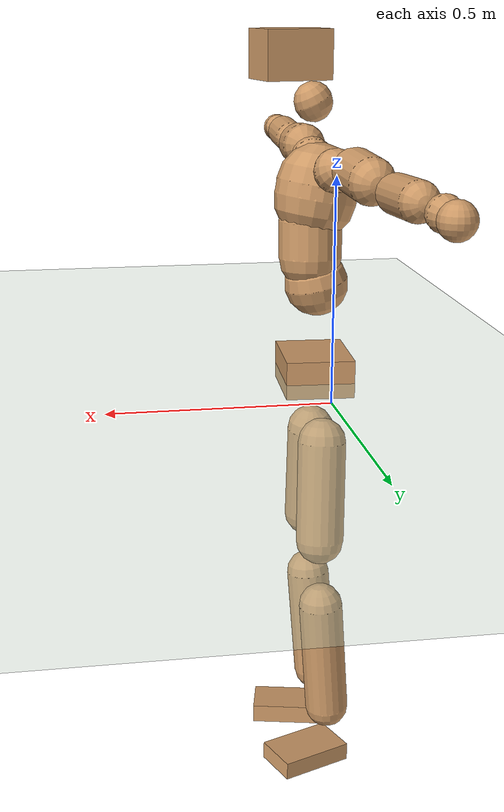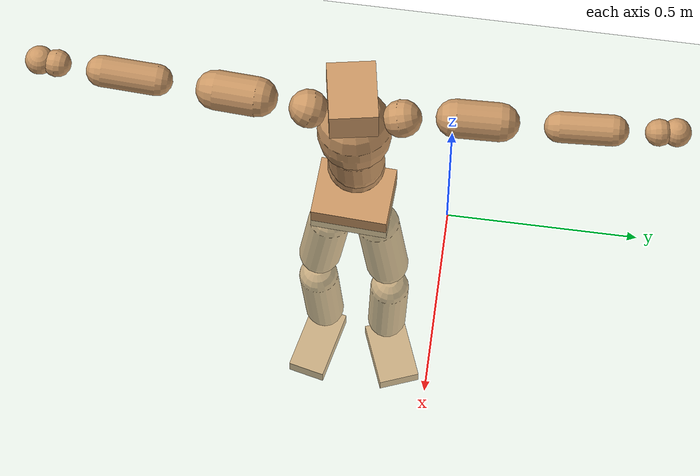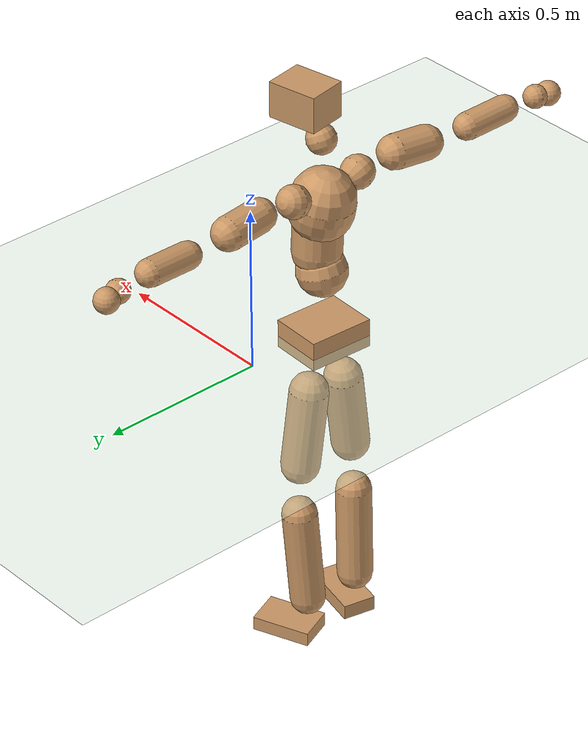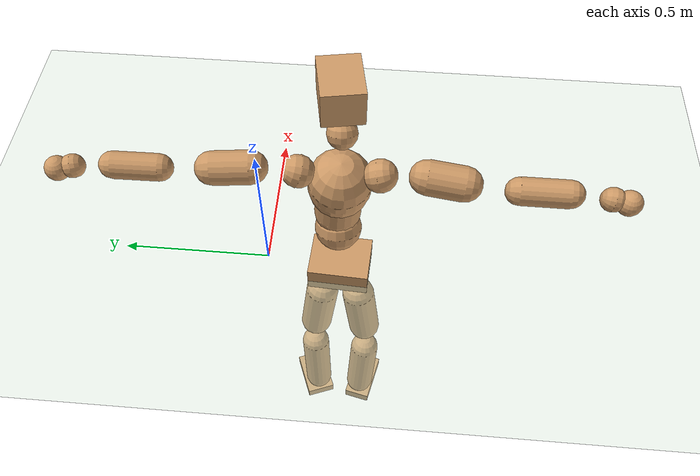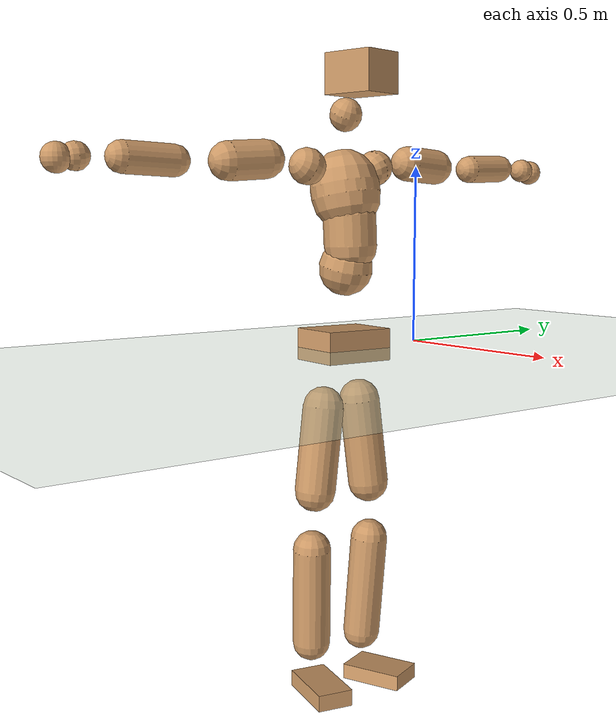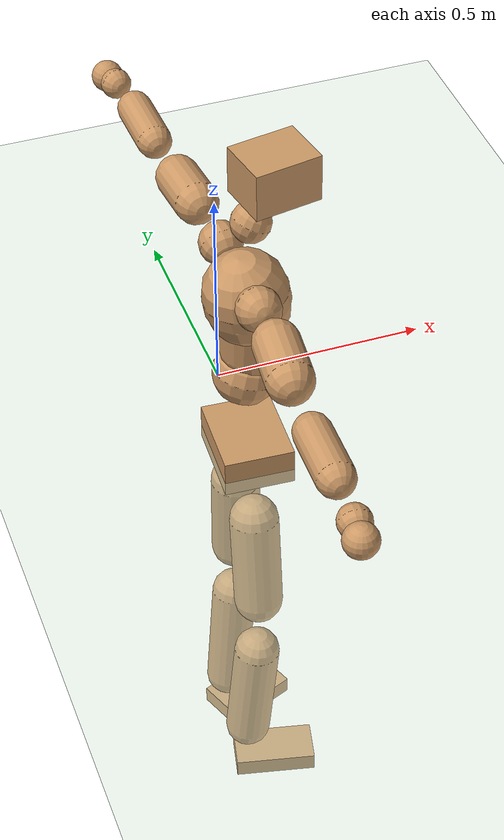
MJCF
<mujoco model="humanoid">
  <compiler coordinate="local" angle="radian"/>
  <default>
    <joint damping="0.0" armature="0.01" stiffness="0.0" limited="true"/>
    <geom conaffinity="1" condim="3" contype="7" margin="0.001" rgba="0.8 0.6 .4 1"/>
  </default>
  <asset>
    <texture type="skybox" builtin="gradient" rgb1=".4 .5 .6" rgb2="0 0 0" width="100" height="100"/>
    <texture builtin="flat" height="1278" mark="cross" markrgb="1 1 1" name="texgeom" random="0.01" rgb1="0.8 0.6 0.4" rgb2="0.8 0.6 0.4" type="cube" width="127"/>
    <texture builtin="checker" height="100" name="texplane" rgb1="0 0 0" rgb2="0.8 0.8 0.8" type="2d" width="100"/>
    <material name="MatPlane" reflectance="0.5" shininess="1" specular="1" texrepeat="60 60" texture="texplane"/>
    <material name="geom" texture="texgeom" texuniform="true"/>
  </asset>
  <worldbody>
    <light cutoff="100" diffuse="1 1 1" dir="-0 0 -1.3" directional="true" exponent="1" pos="0 0 1.3" specular=".1 .1 .1"/>
    <geom conaffinity="1" condim="3" name="floor" pos="0 0 0" rgba="0.8 0.9 0.8 1" size="100 100 .2" type="plane" material="MatPlane"/>
    <body name="Pelvis" pos="-0.0024 -0.2518 0.0157">
      <freejoint name="Pelvis"/>
      <geom type="box" contype="1" conaffinity="1" density="5359.374737" pos="-0.0117 0.0006 -0.0086" size="0.0804 0.1011 0.0445" quat="0.9997 0.0000 0.0000 -0.0259" name="Pelvis"/>
      <body name="L_Hip" pos="-0.023 0.0542 -0.0859">
        <joint name="L_Hip_x" type="hinge" pos="0 0 0" axis="1 0 0" stiffness="1600" damping="160" armature="0.02" range="-180.0000 180.0000"/>
        <joint name="L_Hip_y" type="hinge" pos="0 0 0" axis="0 1 0" stiffness="1600" damping="160" armature="0.02" range="-180.0000 180.0000"/>
        <joint name="L_Hip_z" type="hinge" pos="0 0 0" axis="0 0 1" stiffness="1600" damping="160" armature="0.02" range="-180.0000 180.0000"/>
        <geom type="capsule" contype="1" conaffinity="1" density="2040.816327" size="0.0577" fromto="0.0026 0.0101 -0.0871 0.0098 0.0384 -0.3319" name="L_Hip"/>
        <body name="L_Knee" pos="0.0124 0.0485 -0.4191">
          <joint name="L_Knee_x" type="hinge" pos="0 0 0" axis="1 0 0" stiffness="1600" damping="160" armature="0.02" range="-180.0000 180.0000"/>
          <joint name="L_Knee_y" type="hinge" pos="0 0 0" axis="0 1 0" stiffness="1600" damping="160" armature="0.02" range="-180.0000 180.0000"/>
          <joint name="L_Knee_z" type="hinge" pos="0 0 0" axis="0 0 1" stiffness="1600" damping="160" armature="0.02" range="-180.0000 180.0000"/>
          <geom type="capsule" contype="1" conaffinity="1" density="1234.567901" size="0.0532" fromto="-0.0065 -0.0026 -0.0829 -0.0294 -0.0117 -0.3749" name="L_Knee"/>
          <body name="L_Ankle" pos="-0.0359 -0.0143 -0.4578">
            <joint name="L_Ankle_x" type="hinge" pos="0 0 0" axis="1 0 0" stiffness="1600" damping="160" armature="0.02" range="-180.0000 180.0000"/>
            <joint name="L_Ankle_y" type="hinge" pos="0 0 0" axis="0 1 0" stiffness="1600" damping="160" armature="0.02" range="-180.0000 180.0000"/>
            <joint name="L_Ankle_z" type="hinge" pos="0 0 0" axis="0 0 1" stiffness="1600" damping="160" armature="0.02" range="-180.0000 180.0000"/>
            <geom type="box" contype="1" conaffinity="1" density="1000.000014" pos="0.0643 0.0250 -0.0327" size="0.0899 0.0566 0.0218" quat="0.9829 0.0000 0.0000 0.1843" name="L_Ankle"/>
            <body name="L_Toe" pos="0.1287 0.05 -0.0655">
              <joint name="L_Toe_x" type="hinge" pos="0 0 0" axis="1 0 0" stiffness="1000" damping="100" armature="0.02" range="-180.0000 180.0000"/>
              <joint name="L_Toe_y" type="hinge" pos="0 0 0" axis="0 1 0" stiffness="1000" damping="100" armature="0.02" range="-180.0000 180.0000"/>
              <joint name="L_Toe_z" type="hinge" pos="0 0 0" axis="0 0 1" stiffness="1000" damping="100" armature="0.02" range="-180.0000 180.0000"/>
              <geom type="box" contype="1" conaffinity="1" density="7549084.040781" pos="0.0000 0.0000 0.0347" size="0.0011 0.0027 0.0012" quat="0.9821 0.0000 0.0000 0.1883" name="L_Toe"/>
            </body>
          </body>
        </body>
      </body>
      <body name="R_Hip" pos="-0.0196 -0.055 -0.0949">
        <joint name="R_Hip_x" type="hinge" pos="0 0 0" axis="1 0 0" stiffness="1600" damping="160" armature="0.02" range="-180.0000 180.0000"/>
        <joint name="R_Hip_y" type="hinge" pos="0 0 0" axis="0 1 0" stiffness="1600" damping="160" armature="0.02" range="-180.0000 180.0000"/>
        <joint name="R_Hip_z" type="hinge" pos="0 0 0" axis="0 0 1" stiffness="1600" damping="160" armature="0.02" range="-180.0000 180.0000"/>
        <geom type="capsule" contype="1" conaffinity="1" density="2040.816327" size="0.0571" fromto="-0.0003 -0.0105 -0.0865 -0.0010 -0.0394 -0.3251" name="R_Hip"/>
        <body name="R_Knee" pos="-0.0013 -0.0499 -0.4116">
          <joint name="R_Knee_x" type="hinge" pos="0 0 0" axis="1 0 0" stiffness="1600" damping="160" armature="0.02" range="-180.0000 180.0000"/>
          <joint name="R_Knee_y" type="hinge" pos="0 0 0" axis="0 1 0" stiffness="1600" damping="160" armature="0.02" range="-180.0000 180.0000"/>
          <joint name="R_Knee_z" type="hinge" pos="0 0 0" axis="0 0 1" stiffness="1600" damping="160" armature="0.02" range="-180.0000 180.0000"/>
          <geom type="capsule" contype="1" conaffinity="1" density="1234.567901" size="0.0539" fromto="-0.0063 0.0037 -0.0836 -0.0275 0.0162 -0.3668" name="R_Knee"/>
          <body name="R_Ankle" pos="-0.0338 0.0199 -0.4504">
            <joint name="R_Ankle_x" type="hinge" pos="0 0 0" axis="1 0 0" stiffness="1600" damping="160" armature="0.02" range="-180.0000 180.0000"/>
            <joint name="R_Ankle_y" type="hinge" pos="0 0 0" axis="0 1 0" stiffness="1600" damping="160" armature="0.02" range="-180.0000 180.0000"/>
            <joint name="R_Ankle_z" type="hinge" pos="0 0 0" axis="0 0 1" stiffness="1600" damping="160" armature="0.02" range="-180.0000 180.0000"/>
            <geom type="box" contype="1" conaffinity="1" density="999.999943" pos="0.0699 -0.0160 -0.0334" size="0.0974 0.0509 0.0232" quat="0.9937 0.0000 0.0000 -0.1121" name="R_Ankle"/>
            <body name="R_Toe" pos="0.1398 -0.032 -0.0667">
              <joint name="R_Toe_x" type="hinge" pos="0 0 0" axis="1 0 0" stiffness="1000" damping="100" armature="0.02" range="-180.0000 180.0000"/>
              <joint name="R_Toe_y" type="hinge" pos="0 0 0" axis="0 1 0" stiffness="1000" damping="100" armature="0.02" range="-180.0000 180.0000"/>
              <joint name="R_Toe_z" type="hinge" pos="0 0 0" axis="0 0 1" stiffness="1000" damping="100" armature="0.02" range="-180.0000 180.0000"/>
              <geom type="box" contype="1" conaffinity="1" density="8551182.078524" pos="0.0000 0.0000 0.0357" size="0.001 0.0025 0.0013" quat="0.9946 0.0000 0.0000 -0.1039" name="R_Toe"/>
            </body>
          </body>
        </body>
      </body>
      <body name="Torso" pos="-0.0277 0.0045 0.1292">
        <joint name="Torso_x" type="hinge" pos="0 0 0" axis="1 0 0" stiffness="2000" damping="200" armature="0.02" range="-180.0000 180.0000"/>
        <joint name="Torso_y" type="hinge" pos="0 0 0" axis="0 1 0" stiffness="2000" damping="200" armature="0.02" range="-180.0000 180.0000"/>
        <joint name="Torso_z" type="hinge" pos="0 0 0" axis="0 0 1" stiffness="2000" damping="200" armature="0.02" range="-180.0000 180.0000"/>
        <geom type="capsule" contype="1" conaffinity="1" density="2040.816327" size="0.0753" fromto="0.0161 0.0027 0.0727 0.0166 0.0028 0.0747" name="Torso"/>
        <body name="Spine" pos="0.0327 0.0055 0.1474">
          <joint name="Spine_x" type="hinge" pos="0 0 0" axis="1 0 0" stiffness="2000" damping="200" armature="0.02" range="-180.0000 180.0000"/>
          <joint name="Spine_y" type="hinge" pos="0 0 0" axis="0 1 0" stiffness="2000" damping="200" armature="0.02" range="-180.0000 180.0000"/>
          <joint name="Spine_z" type="hinge" pos="0 0 0" axis="0 0 1" stiffness="2000" damping="200" armature="0.02" range="-180.0000 180.0000"/>
          <geom type="capsule" contype="1" conaffinity="1" density="2040.816327" size="0.0734" fromto="0.0001 -0.0034 0.0733 -0.0000 0.0006 -0.0125" name="Spine"/>
          <body name="Chest" pos="0.0001 -0.0028 0.0608">
            <joint name="Chest_x" type="hinge" pos="0 0 0" axis="1 0 0" stiffness="2000" damping="200" armature="0.02" range="-180.0000 180.0000"/>
            <joint name="Chest_y" type="hinge" pos="0 0 0" axis="0 1 0" stiffness="2000" damping="200" armature="0.02" range="-180.0000 180.0000"/>
            <joint name="Chest_z" type="hinge" pos="0 0 0" axis="0 0 1" stiffness="2000" damping="200" armature="0.02" range="-180.0000 180.0000"/>
            <geom type="capsule" contype="1" conaffinity="1" density="2040.816327" size="0.0954" fromto="-0.0170 -0.0051 0.0938 -0.0111 -0.0033 0.0613" name="Chest"/>
            <body name="Neck" pos="-0.0316 -0.0139 0.2271">
              <joint name="Neck_x" type="hinge" pos="0 0 0" axis="1 0 0" stiffness="1000" damping="100" armature="0.02" range="-180.0000 180.0000"/>
              <joint name="Neck_y" type="hinge" pos="0 0 0" axis="0 1 0" stiffness="1000" damping="100" armature="0.02" range="-180.0000 180.0000"/>
              <joint name="Neck_z" type="hinge" pos="0 0 0" axis="0 0 1" stiffness="1000" damping="100" armature="0.02" range="-180.0000 180.0000"/>
              <geom type="capsule" contype="1" conaffinity="1" density="1000" size="0.0443" fromto="0.0264 0.0040 0.0504 0.0273 0.0041 0.0522" name="Neck"/>
              <body name="Head" pos="0.0537 0.0081 0.1026">
                <joint name="Head_x" type="hinge" pos="0 0 0" axis="1 0 0" stiffness="1000" damping="100" armature="0.02" range="-180.0000 180.0000"/>
                <joint name="Head_y" type="hinge" pos="0 0 0" axis="0 1 0" stiffness="1000" damping="100" armature="0.02" range="-180.0000 180.0000"/>
                <joint name="Head_z" type="hinge" pos="0 0 0" axis="0 0 1" stiffness="1000" damping="100" armature="0.02" range="-180.0000 180.0000"/>
                <geom type="box" contype="1" conaffinity="1" density="2249.999893" pos="0.0278 0.0050 0.0523" size="0.0766 0.0608 0.0544" quat="0.9960 0.0000 0.0000 0.0893" name="Head"/>
              </body>
            </body>
            <body name="L_Thorax" pos="-0.0253 0.0611 0.1194">
              <joint name="L_Thorax_x" type="hinge" pos="0 0 0" axis="1 0 0" stiffness="1000" damping="100" armature="0.02" range="-180.0000 180.0000"/>
              <joint name="L_Thorax_y" type="hinge" pos="0 0 0" axis="0 1 0" stiffness="1000" damping="100" armature="0.02" range="-180.0000 180.0000"/>
              <joint name="L_Thorax_z" type="hinge" pos="0 0 0" axis="0 0 1" stiffness="1000" damping="100" armature="0.02" range="-180.0000 180.0000"/>
              <geom type="capsule" contype="1" conaffinity="1" density="1000" size="0.0491" fromto="-0.0054 0.0528 0.0204 -0.0056 0.0547 0.0211" name="L_Thorax"/>
              <body name="L_Shoulder" pos="-0.011 0.1075 0.0415">
                <joint name="L_Shoulder_x" type="hinge" pos="0 0 0" axis="1 0 0" stiffness="1000" damping="100" armature="0.02" range="-720.0000 720.0000"/>
                <joint name="L_Shoulder_y" type="hinge" pos="0 0 0" axis="0 1 0" stiffness="1000" damping="100" armature="0.02" range="-720.0000 720.0000"/>
                <joint name="L_Shoulder_z" type="hinge" pos="0 0 0" axis="0 0 1" stiffness="1000" damping="100" armature="0.02" range="-720.0000 720.0000"/>
                <geom type="capsule" contype="1" conaffinity="1" density="1000" size="0.05" fromto="-0.0050 0.0797 -0.0048 -0.0120 0.1923 -0.0116" name="L_Shoulder"/>
                <body name="L_Elbow" pos="-0.017 0.2721 -0.0163">
                  <joint name="L_Elbow_x" type="hinge" pos="0 0 0" axis="1 0 0" stiffness="1000" damping="100" armature="0.02" range="-720.0000 720.0000"/>
                  <joint name="L_Elbow_y" type="hinge" pos="0 0 0" axis="0 1 0" stiffness="1000" damping="100" armature="0.02" range="-720.0000 720.0000"/>
                  <joint name="L_Elbow_z" type="hinge" pos="0 0 0" axis="0 0 1" stiffness="1000" damping="100" armature="0.02" range="-720.0000 720.0000"/>
                  <geom type="capsule" contype="1" conaffinity="1" density="1000" size="0.0401" fromto="-0.0028 0.0700 0.0024 -0.0082 0.2043 0.0070" name="L_Elbow"/>
                  <body name="L_Wrist" pos="-0.011 0.2743 0.0094">
                    <joint name="L_Wrist_x" type="hinge" pos="0 0 0" axis="1 0 0" stiffness="600" damping="60" armature="0.02" range="-180.0000 180.0000"/>
                    <joint name="L_Wrist_y" type="hinge" pos="0 0 0" axis="0 1 0" stiffness="600" damping="60" armature="0.02" range="-180.0000 180.0000"/>
                    <joint name="L_Wrist_z" type="hinge" pos="0 0 0" axis="0 0 1" stiffness="600" damping="60" armature="0.02" range="-180.0000 180.0000"/>
                    <geom type="capsule" contype="1" conaffinity="1" density="1000" size="0.0349" fromto="-0.0080 0.0438 -0.0051 -0.0084 0.0458 -0.0053" name="L_Wrist"/>
                    <body name="L_Hand" pos="-0.0164 0.0896 -0.0104">
                      <joint name="L_Hand_x" type="hinge" pos="0 0 0" axis="1 0 0" stiffness="600" damping="60" armature="0.02" range="-180.0000 180.0000"/>
                      <joint name="L_Hand_y" type="hinge" pos="0 0 0" axis="0 1 0" stiffness="600" damping="60" armature="0.02" range="-180.0000 180.0000"/>
                      <joint name="L_Hand_z" type="hinge" pos="0 0 0" axis="0 0 1" stiffness="600" damping="60" armature="0.02" range="-180.0000 180.0000"/>
                      <geom type="sphere" contype="1" conaffinity="1" density="1000" size="0.0366" pos="0.0000 0.0000 0.0000" name="L_Hand"/>
                    </body>
                  </body>
                </body>
              </body>
            </body>
            <body name="R_Thorax" pos="-0.0274 -0.0724 0.1188">
              <joint name="R_Thorax_x" type="hinge" pos="0 0 0" axis="1 0 0" stiffness="1000" damping="100" armature="0.02" range="-180.0000 180.0000"/>
              <joint name="R_Thorax_y" type="hinge" pos="0 0 0" axis="0 1 0" stiffness="1000" damping="100" armature="0.02" range="-180.0000 180.0000"/>
              <joint name="R_Thorax_z" type="hinge" pos="0 0 0" axis="0 0 1" stiffness="1000" damping="100" armature="0.02" range="-180.0000 180.0000"/>
              <geom type="capsule" contype="1" conaffinity="1" density="1000" size="0.0499" fromto="-0.0007 -0.0489 0.0208 -0.0007 -0.0508 0.0215" name="R_Thorax"/>
              <body name="R_Shoulder" pos="-0.0013 -0.0997 0.0423">
                <joint name="R_Shoulder_x" type="hinge" pos="0 0 0" axis="1 0 0" stiffness="1000" damping="100" armature="0.02" range="-720.0000 720.0000"/>
                <joint name="R_Shoulder_y" type="hinge" pos="0 0 0" axis="0 1 0" stiffness="1000" damping="100" armature="0.02" range="-720.0000 720.0000"/>
                <joint name="R_Shoulder_z" type="hinge" pos="0 0 0" axis="0 0 1" stiffness="1000" damping="100" armature="0.02" range="-720.0000 720.0000"/>
                <geom type="capsule" contype="1" conaffinity="1" density="1000" size="0.0517" fromto="-0.0071 -0.0811 -0.0057 -0.0167 -0.1892 -0.0132" name="R_Shoulder"/>
                <body name="R_Elbow" pos="-0.0238 -0.2703 -0.0189">
                  <joint name="R_Elbow_x" type="hinge" pos="0 0 0" axis="1 0 0" stiffness="1000" damping="100" armature="0.02" range="-720.0000 720.0000"/>
                  <joint name="R_Elbow_y" type="hinge" pos="0 0 0" axis="0 1 0" stiffness="1000" damping="100" armature="0.02" range="-720.0000 720.0000"/>
                  <joint name="R_Elbow_z" type="hinge" pos="0 0 0" axis="0 0 1" stiffness="1000" damping="100" armature="0.02" range="-720.0000 720.0000"/>
                  <geom type="capsule" contype="1" conaffinity="1" density="1000" size="0.0409" fromto="-0.0023 -0.0709 0.0027 -0.0068 -0.2117 0.0080" name="R_Elbow"/>
                  <body name="R_Wrist" pos="-0.0091 -0.2826 0.0106">
                    <joint name="R_Wrist_x" type="hinge" pos="0 0 0" axis="1 0 0" stiffness="600" damping="60" armature="0.02" range="-180.0000 180.0000"/>
                    <joint name="R_Wrist_y" type="hinge" pos="0 0 0" axis="0 1 0" stiffness="600" damping="60" armature="0.02" range="-180.0000 180.0000"/>
                    <joint name="R_Wrist_z" type="hinge" pos="0 0 0" axis="0 0 1" stiffness="600" damping="60" armature="0.02" range="-180.0000 180.0000"/>
                    <geom type="capsule" contype="1" conaffinity="1" density="1000" size="0.0354" fromto="-0.0051 -0.0447 -0.0041 -0.0053 -0.0467 -0.0043" name="R_Wrist"/>
                    <body name="R_Hand" pos="-0.0103 -0.0914 -0.0084">
                      <joint name="R_Hand_x" type="hinge" pos="0 0 0" axis="1 0 0" stiffness="600" damping="60" armature="0.02" range="-180.0000 180.0000"/>
                      <joint name="R_Hand_y" type="hinge" pos="0 0 0" axis="0 1 0" stiffness="600" damping="60" armature="0.02" range="-180.0000 180.0000"/>
                      <joint name="R_Hand_z" type="hinge" pos="0 0 0" axis="0 0 1" stiffness="600" damping="60" armature="0.02" range="-180.0000 180.0000"/>
                      <geom type="sphere" contype="1" conaffinity="1" density="1000" size="0.0371" pos="0.0000 0.0000 0.0000" name="R_Hand"/>
                    </body>
                  </body>
                </body>
              </body>
            </body>
          </body>
        </body>
      </body>
    </body>
  </worldbody>
  <actuator>
    <motor name="L_Hip_x" joint="L_Hip_x" gear="500"/>
    <motor name="L_Hip_y" joint="L_Hip_y" gear="500"/>
    <motor name="L_Hip_z" joint="L_Hip_z" gear="500"/>
    <motor name="L_Knee_x" joint="L_Knee_x" gear="500"/>
    <motor name="L_Knee_y" joint="L_Knee_y" gear="500"/>
    <motor name="L_Knee_z" joint="L_Knee_z" gear="500"/>
    <motor name="L_Ankle_x" joint="L_Ankle_x" gear="500"/>
    <motor name="L_Ankle_y" joint="L_Ankle_y" gear="500"/>
    <motor name="L_Ankle_z" joint="L_Ankle_z" gear="500"/>
    <motor name="L_Toe_x" joint="L_Toe_x" gear="500"/>
    <motor name="L_Toe_y" joint="L_Toe_y" gear="500"/>
    <motor name="L_Toe_z" joint="L_Toe_z" gear="500"/>
    <motor name="R_Hip_x" joint="R_Hip_x" gear="500"/>
    <motor name="R_Hip_y" joint="R_Hip_y" gear="500"/>
    <motor name="R_Hip_z" joint="R_Hip_z" gear="500"/>
    <motor name="R_Knee_x" joint="R_Knee_x" gear="500"/>
    <motor name="R_Knee_y" joint="R_Knee_y" gear="500"/>
    <motor name="R_Knee_z" joint="R_Knee_z" gear="500"/>
    <motor name="R_Ankle_x" joint="R_Ankle_x" gear="500"/>
    <motor name="R_Ankle_y" joint="R_Ankle_y" gear="500"/>
    <motor name="R_Ankle_z" joint="R_Ankle_z" gear="500"/>
    <motor name="R_Toe_x" joint="R_Toe_x" gear="500"/>
    <motor name="R_Toe_y" joint="R_Toe_y" gear="500"/>
    <motor name="R_Toe_z" joint="R_Toe_z" gear="500"/>
    <motor name="Torso_x" joint="Torso_x" gear="500"/>
    <motor name="Torso_y" joint="Torso_y" gear="500"/>
    <motor name="Torso_z" joint="Torso_z" gear="500"/>
    <motor name="Spine_x" joint="Spine_x" gear="500"/>
    <motor name="Spine_y" joint="Spine_y" gear="500"/>
    <motor name="Spine_z" joint="Spine_z" gear="500"/>
    <motor name="Chest_x" joint="Chest_x" gear="500"/>
    <motor name="Chest_y" joint="Chest_y" gear="500"/>
    <motor name="Chest_z" joint="Chest_z" gear="500"/>
    <motor name="Neck_x" joint="Neck_x" gear="500"/>
    <motor name="Neck_y" joint="Neck_y" gear="500"/>
    <motor name="Neck_z" joint="Neck_z" gear="500"/>
    <motor name="Head_x" joint="Head_x" gear="500"/>
    <motor name="Head_y" joint="Head_y" gear="500"/>
    <motor name="Head_z" joint="Head_z" gear="500"/>
    <motor name="L_Thorax_x" joint="L_Thorax_x" gear="500"/>
    <motor name="L_Thorax_y" joint="L_Thorax_y" gear="500"/>
    <motor name="L_Thorax_z" joint="L_Thorax_z" gear="500"/>
    <motor name="L_Shoulder_x" joint="L_Shoulder_x" gear="500"/>
    <motor name="L_Shoulder_y" joint="L_Shoulder_y" gear="500"/>
    <motor name="L_Shoulder_z" joint="L_Shoulder_z" gear="500"/>
    <motor name="L_Elbow_x" joint="L_Elbow_x" gear="500"/>
    <motor name="L_Elbow_y" joint="L_Elbow_y" gear="500"/>
    <motor name="L_Elbow_z" joint="L_Elbow_z" gear="500"/>
    <motor name="L_Wrist_x" joint="L_Wrist_x" gear="500"/>
    <motor name="L_Wrist_y" joint="L_Wrist_y" gear="500"/>
    <motor name="L_Wrist_z" joint="L_Wrist_z" gear="500"/>
    <motor name="L_Hand_x" joint="L_Hand_x" gear="500"/>
    <motor name="L_Hand_y" joint="L_Hand_y" gear="500"/>
    <motor name="L_Hand_z" joint="L_Hand_z" gear="500"/>
    <motor name="R_Thorax_x" joint="R_Thorax_x" gear="500"/>
    <motor name="R_Thorax_y" joint="R_Thorax_y" gear="500"/>
    <motor name="R_Thorax_z" joint="R_Thorax_z" gear="500"/>
    <motor name="R_Shoulder_x" joint="R_Shoulder_x" gear="500"/>
    <motor name="R_Shoulder_y" joint="R_Shoulder_y" gear="500"/>
    <motor name="R_Shoulder_z" joint="R_Shoulder_z" gear="500"/>
    <motor name="R_Elbow_x" joint="R_Elbow_x" gear="500"/>
    <motor name="R_Elbow_y" joint="R_Elbow_y" gear="500"/>
    <motor name="R_Elbow_z" joint="R_Elbow_z" gear="500"/>
    <motor name="R_Wrist_x" joint="R_Wrist_x" gear="500"/>
    <motor name="R_Wrist_y" joint="R_Wrist_y" gear="500"/>
    <motor name="R_Wrist_z" joint="R_Wrist_z" gear="500"/>
    <motor name="R_Hand_x" joint="R_Hand_x" gear="500"/>
    <motor name="R_Hand_y" joint="R_Hand_y" gear="500"/>
    <motor name="R_Hand_z" joint="R_Hand_z" gear="500"/>
  </actuator>
  <contact>
    <exclude body1="Torso" body2="Chest"/>
    <exclude body1="Head" body2="Chest"/>
    <exclude body1="R_Knee" body2="R_Toe"/>
    <exclude body1="R_Knee" body2="L_Ankle"/>
    <exclude body1="R_Knee" body2="L_Toe"/>
    <exclude body1="L_Knee" body2="L_Toe"/>
    <exclude body1="L_Knee" body2="R_Ankle"/>
    <exclude body1="L_Knee" body2="R_Toe"/>
    <exclude body1="L_Shoulder" body2="Chest"/>
    <exclude body1="R_Shoulder" body2="Chest"/>
  </contact>
  <sensor/>
  <size njmax="700" nconmax="700"/>
</mujoco>
